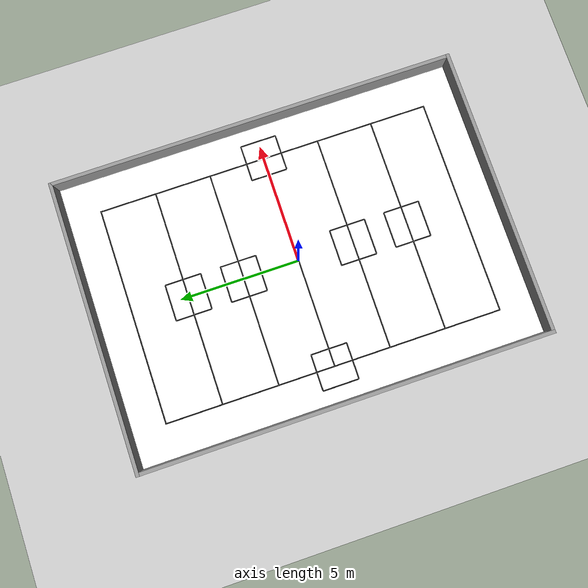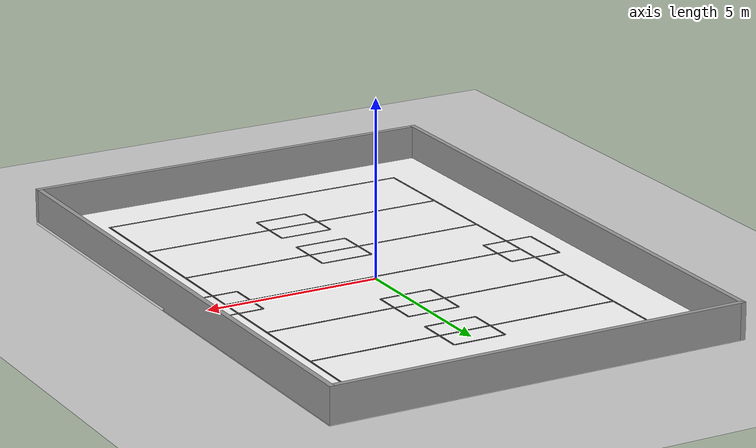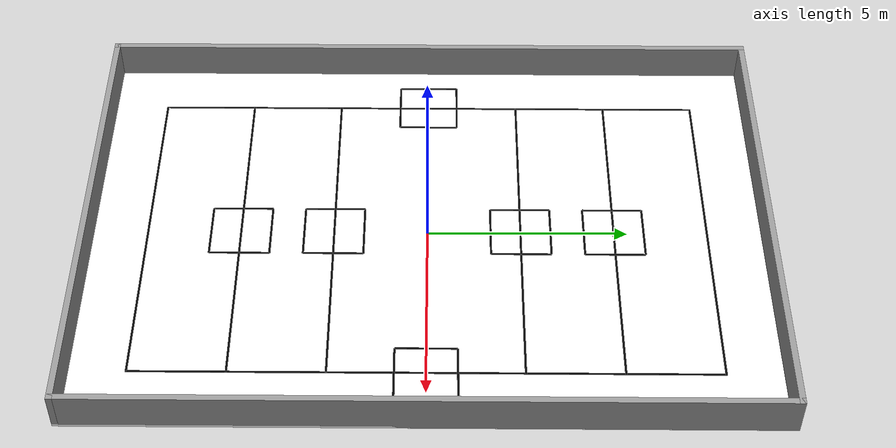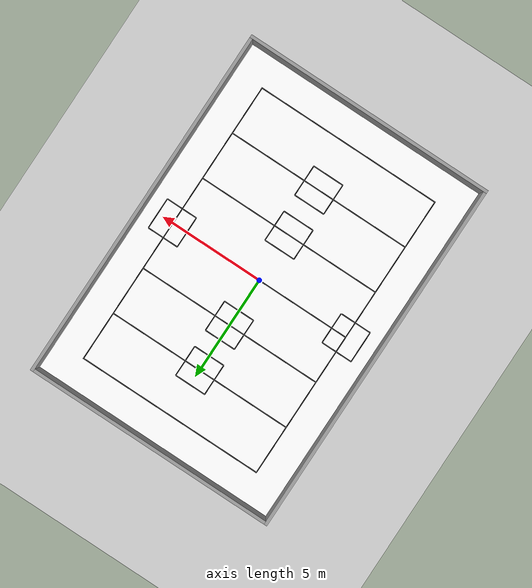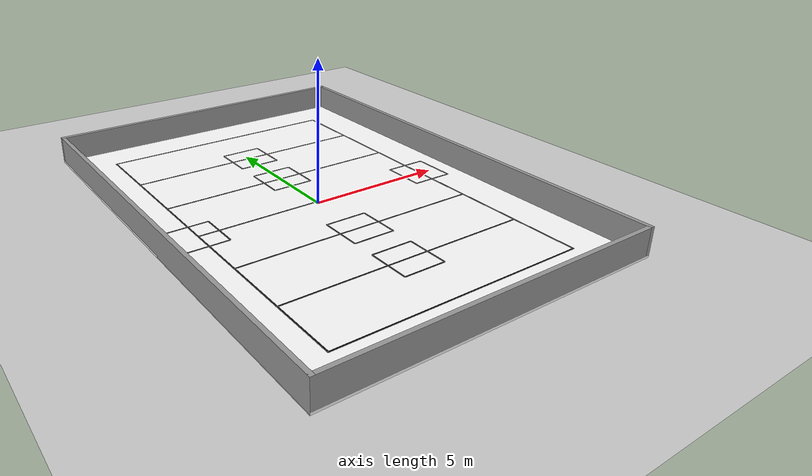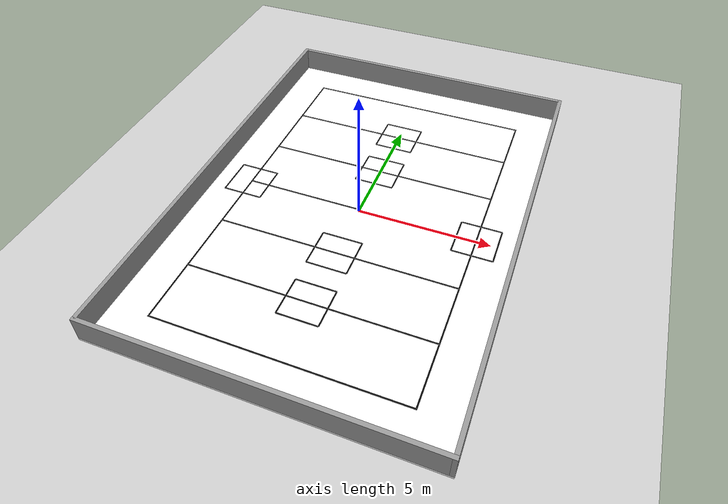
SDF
<sdf version="1.7">
 <world name="default">
  <light name="sun" type="directional">
   <pose>0 0 10 0 -0 0</pose>
   <diffuse>0.8 0.8 0.8 1</diffuse>
   <specular>0.2 0.2 0.2 1</specular>
   <attenuation>
    <range>1000</range>
    <constant>0.9</constant>
    <linear>0.01</linear>
    <quadratic>0.001</quadratic>
   </attenuation>
   <direction>-0.5 0.1 -0.9</direction>
   <spot><inner_angle>0</inner_angle><outer_angle>0</outer_angle><falloff>0</falloff></spot>
  </light>
  <model name="ground_plane">
   <static>1</static>
   <link name="link">
    <collision name="collision">
     <geometry><plane><normal>0 0 1</normal><size>100 100</size></plane></geometry>
    </collision>
    <visual name="visual">
     <geometry><plane><normal>0 0 1</normal><size>100 100</size></plane></geometry>
     <material>
      <script><name>Gazebo/Grey</name><uri>file://media/materials/scripts/gazebo.material</uri></script>
     </material>
    </visual>
   </link>
  </model>
  <model name="wooden_floor">
   <static>1</static>
   <pose>0 0 0.01 0 -0 0</pose>
   <link name="floor_link">
    <collision name="floor_collision"><geometry><box><size>12 17 0.1</size></box></geometry></collision>
    <visual name="floor_visual">
     <geometry><box><size>12 17 0.1</size></box></geometry>
     <material><ambient>1 1 1 1</ambient><diffuse>1 1 1 1</diffuse></material>
    </visual>
   </link>
  </model>
  <model name="black_line">
   <static>1</static>
   <pose>0 0 0.065 0 -0 0</pose>
   <link name="line_link">
    <collision name="line_collision"><geometry><box><size>1 0.05 0.01</size></box></geometry></collision>
    <visual name="line_visual">
     <geometry><box><size>9 0.05 0.01</size></box></geometry>
     <material><ambient>0 0 0 1</ambient><diffuse>0 0 0 1</diffuse></material>
    </visual>
   </link>
  </model>
  <gravity>0 0 -9.8</gravity>
  <scene><ambient>0.4 0.4 0.4 1</ambient><background>0.7 0.7 0.7 1</background><shadows>1</shadows></scene>
  <magnetic_field>6e-06 2.3e-05 -4.2e-05</magnetic_field>
  <atmosphere type="adiabatic"/>
  <physics type="ode">
   <max_step_size>0.001</max_step_size>
   <real_time_factor>1</real_time_factor>
   <real_time_update_rate>1000</real_time_update_rate>
  </physics>
  <spherical_coordinates>
   <surface_model>EARTH_WGS84</surface_model>
   <latitude_deg>0</latitude_deg>
   <longitude_deg>0</longitude_deg>
   <elevation>0</elevation>
   <heading_deg>0</heading_deg>
  </spherical_coordinates>
  <model name="black_line_clone">
   <static>1</static>
   <pose>0 2.33 0.065 0 -0 0</pose>
   <link name="line_link">
    <collision name="line_collision"><geometry><box><size>1 0.05 0.01</size></box></geometry></collision>
    <visual name="line_visual">
     <geometry><box><size>9 0.05 0.01</size></box></geometry>
     <material><ambient>0 0 0 1</ambient><diffuse>0 0 0 1</diffuse></material>
    </visual>
   </link>
  </model>
  <model name="black_line_clone_0">
   <static>1</static>
   <pose>0 4.666 0.065 0 -0 0</pose>
   <link name="line_link">
    <collision name="line_collision"><geometry><box><size>1 0.05 0.01</size></box></geometry></collision>
    <visual name="line_visual">
     <geometry><box><size>9 0.05 0.01</size></box></geometry>
     <material><ambient>0 0 0 1</ambient><diffuse>0 0 0 1</diffuse></material>
    </visual>
   </link>
  </model>
  <model name="black_line_clone_1">
   <static>1</static>
   <pose>0 7 0.065 0 -0 0</pose>
   <link name="line_link">
    <collision name="line_collision"><geometry><box><size>1 0.05 0.01</size></box></geometry></collision>
    <visual name="line_visual">
     <geometry><box><size>9 0.05 0.01</size></box></geometry>
     <material><ambient>0 0 0 1</ambient><diffuse>0 0 0 1</diffuse></material>
    </visual>
   </link>
  </model>
  <model name="black_line_clone_2">
   <static>1</static>
   <pose>0 -2.3333 0.065 0 -0 0</pose>
   <link name="line_link">
    <collision name="line_collision"><geometry><box><size>1 0.05 0.01</size></box></geometry></collision>
    <visual name="line_visual">
     <geometry><box><size>9 0.05 0.01</size></box></geometry>
     <material><ambient>0 0 0 1</ambient><diffuse>0 0 0 1</diffuse></material>
    </visual>
   </link>
  </model>
  <model name="black_line_clone_3">
   <static>1</static>
   <pose>0 -4.6666 0.065 0 -0 0</pose>
   <link name="line_link">
    <collision name="line_collision"><geometry><box><size>1 0.05 0.01</size></box></geometry></collision>
    <visual name="line_visual">
     <geometry><box><size>9 0.05 0.01</size></box></geometry>
     <material><ambient>0 0 0 1</ambient><diffuse>0 0 0 1</diffuse></material>
    </visual>
   </link>
  </model>
  <model name="black_line_clone_4">
   <static>1</static>
   <pose>0 -7 0.065 0 -0 0</pose>
   <link name="line_link">
    <collision name="line_collision"><geometry><box><size>1 0.05 0.01</size></box></geometry></collision>
    <visual name="line_visual">
     <geometry><box><size>9 0.05 0.01</size></box></geometry>
     <material><ambient>0 0 0 1</ambient><diffuse>0 0 0 1</diffuse></material>
    </visual>
   </link>
  </model>
  <model name="black_line_clone_5">
   <static>1</static>
   <pose>4.475 0 0.065 0 -0 0</pose>
   <link name="line_link">
    <collision name="line_collision"><geometry><box><size>1 0.05 0.01</size></box></geometry></collision>
    <visual name="line_visual">
     <geometry><box><size>0.05 14 0.01</size></box></geometry>
     <material><ambient>0 0 0 1</ambient><diffuse>0 0 0 1</diffuse></material>
    </visual>
   </link>
  </model>
  <model name="black_line_clone_5_clone">
   <static>1</static>
   <pose>-4.475 0 0.065 0 -0 0</pose>
   <link name="line_link">
    <collision name="line_collision"><geometry><box><size>1 0.05 0.01</size></box></geometry></collision>
    <visual name="line_visual">
     <geometry><box><size>0.05 14 0.01</size></box></geometry>
     <material><ambient>0 0 0 1</ambient><diffuse>0 0 0 1</diffuse></material>
    </visual>
   </link>
  </model>
  <model name="charging_station">
   <link name="left_side">
    <pose>-0.75 0 0 0 -0 0</pose>
    <visual name="left_side_visual">
     <geometry><box><size>0.05 1.5 0.01</size></box></geometry>
     <material>
      <ambient>0 0 0 1</ambient>
      <diffuse>0 0 0 1</diffuse>
      <shader type="pixel"/>
      <script><name>ModelPreview_1::left_side::left_side_visual_MATERIAL_</name><uri>__default__</uri></script>
     </material>
    </visual>
    <collision name="left_side_collision">
     <geometry><box><size>0.05 1.5 0.01</size></box></geometry>
     <surface>
      <friction>
       <ode><mu>1</mu><mu2>1</mu2><fdir1>0 0 0</fdir1><slip1>0</slip1><slip2>0</slip2></ode>
       <torsional>
        <coefficient>1</coefficient>
        <patch_radius>0</patch_radius>
        <surface_radius>0</surface_radius>
        <use_patch_radius>1</use_patch_radius>
        <ode><slip>0</slip></ode>
       </torsional>
      </friction>
      <bounce><restitution_coefficient>0</restitution_coefficient><threshold>1e+06</threshold></bounce>
      <contact>
       <collide_without_contact>0</collide_without_contact>
       <collide_without_contact_bitmask>1</collide_without_contact_bitmask>
       <collide_bitmask>1</collide_bitmask>
       <ode>
        <soft_cfm>0</soft_cfm>
        <soft_erp>0.2</soft_erp>
        <kp>1e+13</kp>
        <kd>1</kd>
        <max_vel>0.01</max_vel>
        <min_depth>0</min_depth>
       </ode>
       <bullet>
        <split_impulse>1</split_impulse>
        <split_impulse_penetration_threshold>-0.01</split_impulse_penetration_threshold>
        <soft_cfm>0</soft_cfm>
        <soft_erp>0.2</soft_erp>
        <kp>1e+13</kp>
        <kd>1</kd>
       </bullet>
      </contact>
     </surface>
    </collision>
   </link>
   <link name="bottom_side">
    <pose>0 -0.75 0 0 -0 0</pose>
    <visual name="bottom_side_visual">
     <geometry><box><size>1.5 0.05 0.01</size></box></geometry>
     <material>
      <ambient>0 0 0 1</ambient>
      <diffuse>0 0 0 1</diffuse>
      <shader type="pixel"/>
      <script><name>ModelPreview_1::bottom_side::bottom_side_visual_MATERIAL_</name><uri>__default__</uri></script>
     </material>
    </visual>
    <collision name="bottom_side_collision">
     <geometry><box><size>1.5 0.05 0.01</size></box></geometry>
     <surface>
      <friction>
       <ode><mu>1</mu><mu2>1</mu2><fdir1>0 0 0</fdir1><slip1>0</slip1><slip2>0</slip2></ode>
       <torsional>
        <coefficient>1</coefficient>
        <patch_radius>0</patch_radius>
        <surface_radius>0</surface_radius>
        <use_patch_radius>1</use_patch_radius>
        <ode><slip>0</slip></ode>
       </torsional>
      </friction>
      <bounce><restitution_coefficient>0</restitution_coefficient><threshold>1e+06</threshold></bounce>
      <contact>
       <collide_without_contact>0</collide_without_contact>
       <collide_without_contact_bitmask>1</collide_without_contact_bitmask>
       <collide_bitmask>1</collide_bitmask>
       <ode>
        <soft_cfm>0</soft_cfm>
        <soft_erp>0.2</soft_erp>
        <kp>1e+13</kp>
        <kd>1</kd>
        <max_vel>0.01</max_vel>
        <min_depth>0</min_depth>
       </ode>
       <bullet>
        <split_impulse>1</split_impulse>
        <split_impulse_penetration_threshold>-0.01</split_impulse_penetration_threshold>
        <soft_cfm>0</soft_cfm>
        <soft_erp>0.2</soft_erp>
        <kp>1e+13</kp>
        <kd>1</kd>
       </bullet>
      </contact>
     </surface>
    </collision>
   </link>
   <link name="right_side">
    <pose>0.75 0 0 0 -0 0</pose>
    <visual name="right_side_visual">
     <geometry><box><size>0.05 1.5 0.01</size></box></geometry>
     <material>
      <ambient>0 0 0 1</ambient>
      <diffuse>0 0 0 1</diffuse>
      <shader type="pixel"/>
      <script><name>ModelPreview_1::right_side::right_side_visual_MATERIAL_</name><uri>__default__</uri></script>
     </material>
    </visual>
    <collision name="right_side_collision">
     <geometry><box><size>0.05 1.5 0.01</size></box></geometry>
     <surface>
      <friction>
       <ode><mu>1</mu><mu2>1</mu2><fdir1>0 0 0</fdir1><slip1>0</slip1><slip2>0</slip2></ode>
       <torsional>
        <coefficient>1</coefficient>
        <patch_radius>0</patch_radius>
        <surface_radius>0</surface_radius>
        <use_patch_radius>1</use_patch_radius>
        <ode><slip>0</slip></ode>
       </torsional>
      </friction>
      <bounce><restitution_coefficient>0</restitution_coefficient><threshold>1e+06</threshold></bounce>
      <contact>
       <collide_without_contact>0</collide_without_contact>
       <collide_without_contact_bitmask>1</collide_without_contact_bitmask>
       <collide_bitmask>1</collide_bitmask>
       <ode>
        <soft_cfm>0</soft_cfm>
        <soft_erp>0.2</soft_erp>
        <kp>1e+13</kp>
        <kd>1</kd>
        <max_vel>0.01</max_vel>
        <min_depth>0</min_depth>
       </ode>
       <bullet>
        <split_impulse>1</split_impulse>
        <split_impulse_penetration_threshold>-0.01</split_impulse_penetration_threshold>
        <soft_cfm>0</soft_cfm>
        <soft_erp>0.2</soft_erp>
        <kp>1e+13</kp>
        <kd>1</kd>
       </bullet>
      </contact>
     </surface>
    </collision>
   </link>
   <link name="top_side">
    <pose>0 0.75 0 0 -0 0</pose>
    <visual name="top_side_visual">
     <geometry><box><size>1.5 0.05 0.01</size></box></geometry>
     <material>
      <ambient>0 0 0 1</ambient>
      <diffuse>0 0 0 1</diffuse>
      <shader type="pixel"/>
      <script><name>ModelPreview_1::top_side::top_side_visual_MATERIAL_</name><uri>__default__</uri></script>
     </material>
    </visual>
    <collision name="top_side_collision">
     <geometry><box><size>1.5 0.05 0.01</size></box></geometry>
     <surface>
      <friction>
       <ode><mu>1</mu><mu2>1</mu2><fdir1>0 0 0</fdir1><slip1>0</slip1><slip2>0</slip2></ode>
       <torsional>
        <coefficient>1</coefficient>
        <patch_radius>0</patch_radius>
        <surface_radius>0</surface_radius>
        <use_patch_radius>1</use_patch_radius>
        <ode><slip>0</slip></ode>
       </torsional>
      </friction>
      <bounce><restitution_coefficient>0</restitution_coefficient><threshold>1e+06</threshold></bounce>
      <contact>
       <collide_without_contact>0</collide_without_contact>
       <collide_without_contact_bitmask>1</collide_without_contact_bitmask>
       <collide_bitmask>1</collide_bitmask>
       <ode>
        <soft_cfm>0</soft_cfm>
        <soft_erp>0.2</soft_erp>
        <kp>1e+13</kp>
        <kd>1</kd>
        <max_vel>0.01</max_vel>
        <min_depth>0</min_depth>
       </ode>
       <bullet>
        <split_impulse>1</split_impulse>
        <split_impulse_penetration_threshold>-0.01</split_impulse_penetration_threshold>
        <soft_cfm>0</soft_cfm>
        <soft_erp>0.2</soft_erp>
        <kp>1e+13</kp>
        <kd>1</kd>
       </bullet>
      </contact>
     </surface>
    </collision>
   </link>
   <static>1</static>
   <pose>0 -2.333 0.065 0 -0 0</pose>
  </model>
  <model name="charging_station_clone">
   <link name="left_side">
    <pose>-0.75 0 0 0 -0 0</pose>
    <visual name="left_side_visual">
     <geometry><box><size>0.05 1.5 0.01</size></box></geometry>
     <material>
      <ambient>0 0 0 1</ambient>
      <diffuse>0 0 0 1</diffuse>
      <shader type="pixel"/>
      <script><name>ModelPreview_1::left_side::left_side_visual_MATERIAL_</name><uri>__default__</uri></script>
     </material>
    </visual>
    <collision name="left_side_collision">
     <geometry><box><size>0.05 1.5 0.01</size></box></geometry>
     <surface>
      <friction>
       <ode><mu>1</mu><mu2>1</mu2><fdir1>0 0 0</fdir1><slip1>0</slip1><slip2>0</slip2></ode>
       <torsional>
        <coefficient>1</coefficient>
        <patch_radius>0</patch_radius>
        <surface_radius>0</surface_radius>
        <use_patch_radius>1</use_patch_radius>
        <ode><slip>0</slip></ode>
       </torsional>
      </friction>
      <bounce><restitution_coefficient>0</restitution_coefficient><threshold>1e+06</threshold></bounce>
      <contact>
       <collide_without_contact>0</collide_without_contact>
       <collide_without_contact_bitmask>1</collide_without_contact_bitmask>
       <collide_bitmask>1</collide_bitmask>
       <ode>
        <soft_cfm>0</soft_cfm>
        <soft_erp>0.2</soft_erp>
        <kp>1e+13</kp>
        <kd>1</kd>
        <max_vel>0.01</max_vel>
        <min_depth>0</min_depth>
       </ode>
       <bullet>
        <split_impulse>1</split_impulse>
        <split_impulse_penetration_threshold>-0.01</split_impulse_penetration_threshold>
        <soft_cfm>0</soft_cfm>
        <soft_erp>0.2</soft_erp>
        <kp>1e+13</kp>
        <kd>1</kd>
       </bullet>
      </contact>
     </surface>
    </collision>
   </link>
   <link name="bottom_side">
    <pose>0 -0.75 0 0 -0 0</pose>
    <visual name="bottom_side_visual">
     <geometry><box><size>1.5 0.05 0.01</size></box></geometry>
     <material>
      <ambient>0 0 0 1</ambient>
      <diffuse>0 0 0 1</diffuse>
      <shader type="pixel"/>
      <script><name>ModelPreview_1::bottom_side::bottom_side_visual_MATERIAL_</name><uri>__default__</uri></script>
     </material>
    </visual>
    <collision name="bottom_side_collision">
     <geometry><box><size>1.5 0.05 0.01</size></box></geometry>
     <surface>
      <friction>
       <ode><mu>1</mu><mu2>1</mu2><fdir1>0 0 0</fdir1><slip1>0</slip1><slip2>0</slip2></ode>
       <torsional>
        <coefficient>1</coefficient>
        <patch_radius>0</patch_radius>
        <surface_radius>0</surface_radius>
        <use_patch_radius>1</use_patch_radius>
        <ode><slip>0</slip></ode>
       </torsional>
      </friction>
      <bounce><restitution_coefficient>0</restitution_coefficient><threshold>1e+06</threshold></bounce>
      <contact>
       <collide_without_contact>0</collide_without_contact>
       <collide_without_contact_bitmask>1</collide_without_contact_bitmask>
       <collide_bitmask>1</collide_bitmask>
       <ode>
        <soft_cfm>0</soft_cfm>
        <soft_erp>0.2</soft_erp>
        <kp>1e+13</kp>
        <kd>1</kd>
        <max_vel>0.01</max_vel>
        <min_depth>0</min_depth>
       </ode>
       <bullet>
        <split_impulse>1</split_impulse>
        <split_impulse_penetration_threshold>-0.01</split_impulse_penetration_threshold>
        <soft_cfm>0</soft_cfm>
        <soft_erp>0.2</soft_erp>
        <kp>1e+13</kp>
        <kd>1</kd>
       </bullet>
      </contact>
     </surface>
    </collision>
   </link>
   <link name="right_side">
    <pose>0.75 0 0 0 -0 0</pose>
    <visual name="right_side_visual">
     <geometry><box><size>0.05 1.5 0.01</size></box></geometry>
     <material>
      <ambient>0 0 0 1</ambient>
      <diffuse>0 0 0 1</diffuse>
      <shader type="pixel"/>
      <script><name>ModelPreview_1::right_side::right_side_visual_MATERIAL_</name><uri>__default__</uri></script>
     </material>
    </visual>
    <collision name="right_side_collision">
     <geometry><box><size>0.05 1.5 0.01</size></box></geometry>
     <surface>
      <friction>
       <ode><mu>1</mu><mu2>1</mu2><fdir1>0 0 0</fdir1><slip1>0</slip1><slip2>0</slip2></ode>
       <torsional>
        <coefficient>1</coefficient>
        <patch_radius>0</patch_radius>
        <surface_radius>0</surface_radius>
        <use_patch_radius>1</use_patch_radius>
        <ode><slip>0</slip></ode>
       </torsional>
      </friction>
      <bounce><restitution_coefficient>0</restitution_coefficient><threshold>1e+06</threshold></bounce>
      <contact>
       <collide_without_contact>0</collide_without_contact>
       <collide_without_contact_bitmask>1</collide_without_contact_bitmask>
       <collide_bitmask>1</collide_bitmask>
       <ode>
        <soft_cfm>0</soft_cfm>
        <soft_erp>0.2</soft_erp>
        <kp>1e+13</kp>
        <kd>1</kd>
        <max_vel>0.01</max_vel>
        <min_depth>0</min_depth>
       </ode>
       <bullet>
        <split_impulse>1</split_impulse>
        <split_impulse_penetration_threshold>-0.01</split_impulse_penetration_threshold>
        <soft_cfm>0</soft_cfm>
        <soft_erp>0.2</soft_erp>
        <kp>1e+13</kp>
        <kd>1</kd>
       </bullet>
      </contact>
     </surface>
    </collision>
   </link>
   <link name="top_side">
    <pose>0 0.75 0 0 -0 0</pose>
    <visual name="top_side_visual">
     <geometry><box><size>1.5 0.05 0.01</size></box></geometry>
     <material>
      <ambient>0 0 0 1</ambient>
      <diffuse>0 0 0 1</diffuse>
      <shader type="pixel"/>
      <script><name>ModelPreview_1::top_side::top_side_visual_MATERIAL_</name><uri>__default__</uri></script>
     </material>
    </visual>
    <collision name="top_side_collision">
     <geometry><box><size>1.5 0.05 0.01</size></box></geometry>
     <surface>
      <friction>
       <ode><mu>1</mu><mu2>1</mu2><fdir1>0 0 0</fdir1><slip1>0</slip1><slip2>0</slip2></ode>
       <torsional>
        <coefficient>1</coefficient>
        <patch_radius>0</patch_radius>
        <surface_radius>0</surface_radius>
        <use_patch_radius>1</use_patch_radius>
        <ode><slip>0</slip></ode>
       </torsional>
      </friction>
      <bounce><restitution_coefficient>0</restitution_coefficient><threshold>1e+06</threshold></bounce>
      <contact>
       <collide_without_contact>0</collide_without_contact>
       <collide_without_contact_bitmask>1</collide_without_contact_bitmask>
       <collide_bitmask>1</collide_bitmask>
       <ode>
        <soft_cfm>0</soft_cfm>
        <soft_erp>0.2</soft_erp>
        <kp>1e+13</kp>
        <kd>1</kd>
        <max_vel>0.01</max_vel>
        <min_depth>0</min_depth>
       </ode>
       <bullet>
        <split_impulse>1</split_impulse>
        <split_impulse_penetration_threshold>-0.01</split_impulse_penetration_threshold>
        <soft_cfm>0</soft_cfm>
        <soft_erp>0.2</soft_erp>
        <kp>1e+13</kp>
        <kd>1</kd>
       </bullet>
      </contact>
     </surface>
    </collision>
   </link>
   <static>1</static>
   <pose>0 -4.66666 0.065 0 -0 0</pose>
  </model>
  <model name="charging_station_clone_0">
   <link name="left_side">
    <pose>-0.75 0 0 0 -0 0</pose>
    <visual name="left_side_visual">
     <geometry><box><size>0.05 1.5 0.01</size></box></geometry>
     <material>
      <ambient>0 0 0 1</ambient>
      <diffuse>0 0 0 1</diffuse>
      <shader type="pixel"/>
      <script><name>ModelPreview_1::left_side::left_side_visual_MATERIAL_</name><uri>__default__</uri></script>
     </material>
    </visual>
    <collision name="left_side_collision">
     <geometry><box><size>0.05 1.5 0.01</size></box></geometry>
     <surface>
      <friction>
       <ode><mu>1</mu><mu2>1</mu2><fdir1>0 0 0</fdir1><slip1>0</slip1><slip2>0</slip2></ode>
       <torsional>
        <coefficient>1</coefficient>
        <patch_radius>0</patch_radius>
        <surface_radius>0</surface_radius>
        <use_patch_radius>1</use_patch_radius>
        <ode><slip>0</slip></ode>
       </torsional>
      </friction>
      <bounce><restitution_coefficient>0</restitution_coefficient><threshold>1e+06</threshold></bounce>
      <contact>
       <collide_without_contact>0</collide_without_contact>
       <collide_without_contact_bitmask>1</collide_without_contact_bitmask>
       <collide_bitmask>1</collide_bitmask>
       <ode>
        <soft_cfm>0</soft_cfm>
        <soft_erp>0.2</soft_erp>
        <kp>1e+13</kp>
        <kd>1</kd>
        <max_vel>0.01</max_vel>
        <min_depth>0</min_depth>
       </ode>
       <bullet>
        <split_impulse>1</split_impulse>
        <split_impulse_penetration_threshold>-0.01</split_impulse_penetration_threshold>
        <soft_cfm>0</soft_cfm>
        <soft_erp>0.2</soft_erp>
        <kp>1e+13</kp>
        <kd>1</kd>
       </bullet>
      </contact>
     </surface>
    </collision>
   </link>
   <link name="bottom_side">
    <pose>0 -0.75 0 0 -0 0</pose>
    <visual name="bottom_side_visual">
     <geometry><box><size>1.5 0.05 0.01</size></box></geometry>
     <material>
      <ambient>0 0 0 1</ambient>
      <diffuse>0 0 0 1</diffuse>
      <shader type="pixel"/>
      <script><name>ModelPreview_1::bottom_side::bottom_side_visual_MATERIAL_</name><uri>__default__</uri></script>
     </material>
    </visual>
    <collision name="bottom_side_collision">
     <geometry><box><size>1.5 0.05 0.01</size></box></geometry>
     <surface>
      <friction>
       <ode><mu>1</mu><mu2>1</mu2><fdir1>0 0 0</fdir1><slip1>0</slip1><slip2>0</slip2></ode>
       <torsional>
        <coefficient>1</coefficient>
        <patch_radius>0</patch_radius>
        <surface_radius>0</surface_radius>
        <use_patch_radius>1</use_patch_radius>
        <ode><slip>0</slip></ode>
       </torsional>
      </friction>
      <bounce><restitution_coefficient>0</restitution_coefficient><threshold>1e+06</threshold></bounce>
      <contact>
       <collide_without_contact>0</collide_without_contact>
       <collide_without_contact_bitmask>1</collide_without_contact_bitmask>
       <collide_bitmask>1</collide_bitmask>
       <ode>
        <soft_cfm>0</soft_cfm>
        <soft_erp>0.2</soft_erp>
        <kp>1e+13</kp>
        <kd>1</kd>
        <max_vel>0.01</max_vel>
        <min_depth>0</min_depth>
       </ode>
       <bullet>
        <split_impulse>1</split_impulse>
        <split_impulse_penetration_threshold>-0.01</split_impulse_penetration_threshold>
        <soft_cfm>0</soft_cfm>
        <soft_erp>0.2</soft_erp>
        <kp>1e+13</kp>
        <kd>1</kd>
       </bullet>
      </contact>
     </surface>
    </collision>
   </link>
   <link name="right_side">
    <pose>0.75 0 0 0 -0 0</pose>
    <visual name="right_side_visual">
     <geometry><box><size>0.05 1.5 0.01</size></box></geometry>
     <material>
      <ambient>0 0 0 1</ambient>
      <diffuse>0 0 0 1</diffuse>
      <shader type="pixel"/>
      <script><name>ModelPreview_1::right_side::right_side_visual_MATERIAL_</name><uri>__default__</uri></script>
     </material>
    </visual>
    <collision name="right_side_collision">
     <geometry><box><size>0.05 1.5 0.01</size></box></geometry>
     <surface>
      <friction>
       <ode><mu>1</mu><mu2>1</mu2><fdir1>0 0 0</fdir1><slip1>0</slip1><slip2>0</slip2></ode>
       <torsional>
        <coefficient>1</coefficient>
        <patch_radius>0</patch_radius>
        <surface_radius>0</surface_radius>
        <use_patch_radius>1</use_patch_radius>
        <ode><slip>0</slip></ode>
       </torsional>
      </friction>
      <bounce><restitution_coefficient>0</restitution_coefficient><threshold>1e+06</threshold></bounce>
      <contact>
       <collide_without_contact>0</collide_without_contact>
       <collide_without_contact_bitmask>1</collide_without_contact_bitmask>
       <collide_bitmask>1</collide_bitmask>
       <ode>
        <soft_cfm>0</soft_cfm>
        <soft_erp>0.2</soft_erp>
        <kp>1e+13</kp>
        <kd>1</kd>
        <max_vel>0.01</max_vel>
        <min_depth>0</min_depth>
       </ode>
       <bullet>
        <split_impulse>1</split_impulse>
        <split_impulse_penetration_threshold>-0.01</split_impulse_penetration_threshold>
        <soft_cfm>0</soft_cfm>
        <soft_erp>0.2</soft_erp>
        <kp>1e+13</kp>
        <kd>1</kd>
       </bullet>
      </contact>
     </surface>
    </collision>
   </link>
   <link name="top_side">
    <pose>0 0.75 0 0 -0 0</pose>
    <visual name="top_side_visual">
     <geometry><box><size>1.5 0.05 0.01</size></box></geometry>
     <material>
      <ambient>0 0 0 1</ambient>
      <diffuse>0 0 0 1</diffuse>
      <shader type="pixel"/>
      <script><name>ModelPreview_1::top_side::top_side_visual_MATERIAL_</name><uri>__default__</uri></script>
     </material>
    </visual>
    <collision name="top_side_collision">
     <geometry><box><size>1.5 0.05 0.01</size></box></geometry>
     <surface>
      <friction>
       <ode><mu>1</mu><mu2>1</mu2><fdir1>0 0 0</fdir1><slip1>0</slip1><slip2>0</slip2></ode>
       <torsional>
        <coefficient>1</coefficient>
        <patch_radius>0</patch_radius>
        <surface_radius>0</surface_radius>
        <use_patch_radius>1</use_patch_radius>
        <ode><slip>0</slip></ode>
       </torsional>
      </friction>
      <bounce><restitution_coefficient>0</restitution_coefficient><threshold>1e+06</threshold></bounce>
      <contact>
       <collide_without_contact>0</collide_without_contact>
       <collide_without_contact_bitmask>1</collide_without_contact_bitmask>
       <collide_bitmask>1</collide_bitmask>
       <ode>
        <soft_cfm>0</soft_cfm>
        <soft_erp>0.2</soft_erp>
        <kp>1e+13</kp>
        <kd>1</kd>
        <max_vel>0.01</max_vel>
        <min_depth>0</min_depth>
       </ode>
       <bullet>
        <split_impulse>1</split_impulse>
        <split_impulse_penetration_threshold>-0.01</split_impulse_penetration_threshold>
        <soft_cfm>0</soft_cfm>
        <soft_erp>0.2</soft_erp>
        <kp>1e+13</kp>
        <kd>1</kd>
       </bullet>
      </contact>
     </surface>
    </collision>
   </link>
   <static>1</static>
   <pose>0 2.333 0.065 0 -0 0</pose>
  </model>
  <model name="charging_station_clone_1">
   <link name="left_side">
    <pose>-0.75 0 0 0 -0 0</pose>
    <visual name="left_side_visual">
     <geometry><box><size>0.05 1.5 0.01</size></box></geometry>
     <material>
      <ambient>0 0 0 1</ambient>
      <diffuse>0 0 0 1</diffuse>
      <shader type="pixel"/>
      <script><name>ModelPreview_1::left_side::left_side_visual_MATERIAL_</name><uri>__default__</uri></script>
     </material>
    </visual>
    <collision name="left_side_collision">
     <geometry><box><size>0.05 1.5 0.01</size></box></geometry>
     <surface>
      <friction>
       <ode><mu>1</mu><mu2>1</mu2><fdir1>0 0 0</fdir1><slip1>0</slip1><slip2>0</slip2></ode>
       <torsional>
        <coefficient>1</coefficient>
        <patch_radius>0</patch_radius>
        <surface_radius>0</surface_radius>
        <use_patch_radius>1</use_patch_radius>
        <ode><slip>0</slip></ode>
       </torsional>
      </friction>
      <bounce><restitution_coefficient>0</restitution_coefficient><threshold>1e+06</threshold></bounce>
      <contact>
       <collide_without_contact>0</collide_without_contact>
       <collide_without_contact_bitmask>1</collide_without_contact_bitmask>
       <collide_bitmask>1</collide_bitmask>
       <ode>
        <soft_cfm>0</soft_cfm>
        <soft_erp>0.2</soft_erp>
        <kp>1e+13</kp>
        <kd>1</kd>
        <max_vel>0.01</max_vel>
        <min_depth>0</min_depth>
       </ode>
       <bullet>
        <split_impulse>1</split_impulse>
        <split_impulse_penetration_threshold>-0.01</split_impulse_penetration_threshold>
        <soft_cfm>0</soft_cfm>
        <soft_erp>0.2</soft_erp>
        <kp>1e+13</kp>
        <kd>1</kd>
       </bullet>
      </contact>
     </surface>
    </collision>
   </link>
   <link name="bottom_side">
    <pose>0 -0.75 0 0 -0 0</pose>
    <visual name="bottom_side_visual">
     <geometry><box><size>1.5 0.05 0.01</size></box></geometry>
     <material>
      <ambient>0 0 0 1</ambient>
      <diffuse>0 0 0 1</diffuse>
      <shader type="pixel"/>
      <script><name>ModelPreview_1::bottom_side::bottom_side_visual_MATERIAL_</name><uri>__default__</uri></script>
     </material>
    </visual>
    <collision name="bottom_side_collision">
     <geometry><box><size>1.5 0.05 0.01</size></box></geometry>
     <surface>
      <friction>
       <ode><mu>1</mu><mu2>1</mu2><fdir1>0 0 0</fdir1><slip1>0</slip1><slip2>0</slip2></ode>
       <torsional>
        <coefficient>1</coefficient>
        <patch_radius>0</patch_radius>
        <surface_radius>0</surface_radius>
        <use_patch_radius>1</use_patch_radius>
        <ode><slip>0</slip></ode>
       </torsional>
      </friction>
      <bounce><restitution_coefficient>0</restitution_coefficient><threshold>1e+06</threshold></bounce>
      <contact>
       <collide_without_contact>0</collide_without_contact>
       <collide_without_contact_bitmask>1</collide_without_contact_bitmask>
       <collide_bitmask>1</collide_bitmask>
       <ode>
        <soft_cfm>0</soft_cfm>
        <soft_erp>0.2</soft_erp>
        <kp>1e+13</kp>
        <kd>1</kd>
        <max_vel>0.01</max_vel>
        <min_depth>0</min_depth>
       </ode>
       <bullet>
        <split_impulse>1</split_impulse>
        <split_impulse_penetration_threshold>-0.01</split_impulse_penetration_threshold>
        <soft_cfm>0</soft_cfm>
        <soft_erp>0.2</soft_erp>
        <kp>1e+13</kp>
        <kd>1</kd>
       </bullet>
      </contact>
     </surface>
    </collision>
   </link>
   <link name="right_side">
    <pose>0.75 0 0 0 -0 0</pose>
    <visual name="right_side_visual">
     <geometry><box><size>0.05 1.5 0.01</size></box></geometry>
     <material>
      <ambient>0 0 0 1</ambient>
      <diffuse>0 0 0 1</diffuse>
      <shader type="pixel"/>
      <script><name>ModelPreview_1::right_side::right_side_visual_MATERIAL_</name><uri>__default__</uri></script>
     </material>
    </visual>
    <collision name="right_side_collision">
     <geometry><box><size>0.05 1.5 0.01</size></box></geometry>
     <surface>
      <friction>
       <ode><mu>1</mu><mu2>1</mu2><fdir1>0 0 0</fdir1><slip1>0</slip1><slip2>0</slip2></ode>
       <torsional>
        <coefficient>1</coefficient>
        <patch_radius>0</patch_radius>
        <surface_radius>0</surface_radius>
        <use_patch_radius>1</use_patch_radius>
        <ode><slip>0</slip></ode>
       </torsional>
      </friction>
      <bounce><restitution_coefficient>0</restitution_coefficient><threshold>1e+06</threshold></bounce>
      <contact>
       <collide_without_contact>0</collide_without_contact>
       <collide_without_contact_bitmask>1</collide_without_contact_bitmask>
       <collide_bitmask>1</collide_bitmask>
       <ode>
        <soft_cfm>0</soft_cfm>
        <soft_erp>0.2</soft_erp>
        <kp>1e+13</kp>
        <kd>1</kd>
        <max_vel>0.01</max_vel>
        <min_depth>0</min_depth>
       </ode>
       <bullet>
        <split_impulse>1</split_impulse>
        <split_impulse_penetration_threshold>-0.01</split_impulse_penetration_threshold>
        <soft_cfm>0</soft_cfm>
        <soft_erp>0.2</soft_erp>
        <kp>1e+13</kp>
        <kd>1</kd>
       </bullet>
      </contact>
     </surface>
    </collision>
   </link>
   <link name="top_side">
    <pose>0 0.75 0 0 -0 0</pose>
    <visual name="top_side_visual">
     <geometry><box><size>1.5 0.05 0.01</size></box></geometry>
     <material>
      <ambient>0 0 0 1</ambient>
      <diffuse>0 0 0 1</diffuse>
      <shader type="pixel"/>
      <script><name>ModelPreview_1::top_side::top_side_visual_MATERIAL_</name><uri>__default__</uri></script>
     </material>
    </visual>
    <collision name="top_side_collision">
     <geometry><box><size>1.5 0.05 0.01</size></box></geometry>
     <surface>
      <friction>
       <ode><mu>1</mu><mu2>1</mu2><fdir1>0 0 0</fdir1><slip1>0</slip1><slip2>0</slip2></ode>
       <torsional>
        <coefficient>1</coefficient>
        <patch_radius>0</patch_radius>
        <surface_radius>0</surface_radius>
        <use_patch_radius>1</use_patch_radius>
        <ode><slip>0</slip></ode>
       </torsional>
      </friction>
      <bounce><restitution_coefficient>0</restitution_coefficient><threshold>1e+06</threshold></bounce>
      <contact>
       <collide_without_contact>0</collide_without_contact>
       <collide_without_contact_bitmask>1</collide_without_contact_bitmask>
       <collide_bitmask>1</collide_bitmask>
       <ode>
        <soft_cfm>0</soft_cfm>
        <soft_erp>0.2</soft_erp>
        <kp>1e+13</kp>
        <kd>1</kd>
        <max_vel>0.01</max_vel>
        <min_depth>0</min_depth>
       </ode>
       <bullet>
        <split_impulse>1</split_impulse>
        <split_impulse_penetration_threshold>-0.01</split_impulse_penetration_threshold>
        <soft_cfm>0</soft_cfm>
        <soft_erp>0.2</soft_erp>
        <kp>1e+13</kp>
        <kd>1</kd>
       </bullet>
      </contact>
     </surface>
    </collision>
   </link>
   <static>1</static>
   <pose>0 4.666 0.065 0 -0 0</pose>
  </model>
  <model name="charging_station_clone_2">
   <link name="left_side">
    <pose>-0.75 0 0 0 -0 0</pose>
    <visual name="left_side_visual">
     <geometry><box><size>0.05 1.5 0.01</size></box></geometry>
     <material>
      <ambient>0 0 0 1</ambient>
      <diffuse>0 0 0 1</diffuse>
      <shader type="pixel"/>
      <script><name>ModelPreview_1::left_side::left_side_visual_MATERIAL_</name><uri>__default__</uri></script>
     </material>
    </visual>
    <collision name="left_side_collision">
     <geometry><box><size>0.05 1.5 0.01</size></box></geometry>
     <surface>
      <friction>
       <ode><mu>1</mu><mu2>1</mu2><fdir1>0 0 0</fdir1><slip1>0</slip1><slip2>0</slip2></ode>
       <torsional>
        <coefficient>1</coefficient>
        <patch_radius>0</patch_radius>
        <surface_radius>0</surface_radius>
        <use_patch_radius>1</use_patch_radius>
        <ode><slip>0</slip></ode>
       </torsional>
      </friction>
      <bounce><restitution_coefficient>0</restitution_coefficient><threshold>1e+06</threshold></bounce>
      <contact>
       <collide_without_contact>0</collide_without_contact>
       <collide_without_contact_bitmask>1</collide_without_contact_bitmask>
       <collide_bitmask>1</collide_bitmask>
       <ode>
        <soft_cfm>0</soft_cfm>
        <soft_erp>0.2</soft_erp>
        <kp>1e+13</kp>
        <kd>1</kd>
        <max_vel>0.01</max_vel>
        <min_depth>0</min_depth>
       </ode>
       <bullet>
        <split_impulse>1</split_impulse>
        <split_impulse_penetration_threshold>-0.01</split_impulse_penetration_threshold>
        <soft_cfm>0</soft_cfm>
        <soft_erp>0.2</soft_erp>
        <kp>1e+13</kp>
        <kd>1</kd>
       </bullet>
      </contact>
     </surface>
    </collision>
   </link>
   <link name="bottom_side">
    <pose>0 -0.75 0 0 -0 0</pose>
    <visual name="bottom_side_visual">
     <geometry><box><size>1.5 0.05 0.01</size></box></geometry>
     <material>
      <ambient>0 0 0 1</ambient>
      <diffuse>0 0 0 1</diffuse>
      <shader type="pixel"/>
      <script><name>ModelPreview_1::bottom_side::bottom_side_visual_MATERIAL_</name><uri>__default__</uri></script>
     </material>
    </visual>
    <collision name="bottom_side_collision">
     <geometry><box><size>1.5 0.05 0.01</size></box></geometry>
     <surface>
      <friction>
       <ode><mu>1</mu><mu2>1</mu2><fdir1>0 0 0</fdir1><slip1>0</slip1><slip2>0</slip2></ode>
       <torsional>
        <coefficient>1</coefficient>
        <patch_radius>0</patch_radius>
        <surface_radius>0</surface_radius>
        <use_patch_radius>1</use_patch_radius>
        <ode><slip>0</slip></ode>
       </torsional>
      </friction>
      <bounce><restitution_coefficient>0</restitution_coefficient><threshold>1e+06</threshold></bounce>
      <contact>
       <collide_without_contact>0</collide_without_contact>
       <collide_without_contact_bitmask>1</collide_without_contact_bitmask>
       <collide_bitmask>1</collide_bitmask>
       <ode>
        <soft_cfm>0</soft_cfm>
        <soft_erp>0.2</soft_erp>
        <kp>1e+13</kp>
        <kd>1</kd>
        <max_vel>0.01</max_vel>
        <min_depth>0</min_depth>
       </ode>
       <bullet>
        <split_impulse>1</split_impulse>
        <split_impulse_penetration_threshold>-0.01</split_impulse_penetration_threshold>
        <soft_cfm>0</soft_cfm>
        <soft_erp>0.2</soft_erp>
        <kp>1e+13</kp>
        <kd>1</kd>
       </bullet>
      </contact>
     </surface>
    </collision>
   </link>
   <link name="right_side">
    <pose>0.75 0 0 0 -0 0</pose>
    <visual name="right_side_visual">
     <geometry><box><size>0.05 1.5 0.01</size></box></geometry>
     <material>
      <ambient>0 0 0 1</ambient>
      <diffuse>0 0 0 1</diffuse>
      <shader type="pixel"/>
      <script><name>ModelPreview_1::right_side::right_side_visual_MATERIAL_</name><uri>__default__</uri></script>
     </material>
    </visual>
    <collision name="right_side_collision">
     <geometry><box><size>0.05 1.5 0.01</size></box></geometry>
     <surface>
      <friction>
       <ode><mu>1</mu><mu2>1</mu2><fdir1>0 0 0</fdir1><slip1>0</slip1><slip2>0</slip2></ode>
       <torsional>
        <coefficient>1</coefficient>
        <patch_radius>0</patch_radius>
        <surface_radius>0</surface_radius>
        <use_patch_radius>1</use_patch_radius>
        <ode><slip>0</slip></ode>
       </torsional>
      </friction>
      <bounce><restitution_coefficient>0</restitution_coefficient><threshold>1e+06</threshold></bounce>
      <contact>
       <collide_without_contact>0</collide_without_contact>
       <collide_without_contact_bitmask>1</collide_without_contact_bitmask>
       <collide_bitmask>1</collide_bitmask>
       <ode>
        <soft_cfm>0</soft_cfm>
        <soft_erp>0.2</soft_erp>
        <kp>1e+13</kp>
        <kd>1</kd>
        <max_vel>0.01</max_vel>
        <min_depth>0</min_depth>
       </ode>
       <bullet>
        <split_impulse>1</split_impulse>
        <split_impulse_penetration_threshold>-0.01</split_impulse_penetration_threshold>
        <soft_cfm>0</soft_cfm>
        <soft_erp>0.2</soft_erp>
        <kp>1e+13</kp>
        <kd>1</kd>
       </bullet>
      </contact>
     </surface>
    </collision>
   </link>
   <link name="top_side">
    <pose>0 0.75 0 0 -0 0</pose>
    <visual name="top_side_visual">
     <geometry><box><size>1.5 0.05 0.01</size></box></geometry>
     <material>
      <ambient>0 0 0 1</ambient>
      <diffuse>0 0 0 1</diffuse>
      <shader type="pixel"/>
      <script><name>ModelPreview_1::top_side::top_side_visual_MATERIAL_</name><uri>__default__</uri></script>
     </material>
    </visual>
    <collision name="top_side_collision">
     <geometry><box><size>1.5 0.05 0.01</size></box></geometry>
     <surface>
      <friction>
       <ode><mu>1</mu><mu2>1</mu2><fdir1>0 0 0</fdir1><slip1>0</slip1><slip2>0</slip2></ode>
       <torsional>
        <coefficient>1</coefficient>
        <patch_radius>0</patch_radius>
        <surface_radius>0</surface_radius>
        <use_patch_radius>1</use_patch_radius>
        <ode><slip>0</slip></ode>
       </torsional>
      </friction>
      <bounce><restitution_coefficient>0</restitution_coefficient><threshold>1e+06</threshold></bounce>
      <contact>
       <collide_without_contact>0</collide_without_contact>
       <collide_without_contact_bitmask>1</collide_without_contact_bitmask>
       <collide_bitmask>1</collide_bitmask>
       <ode>
        <soft_cfm>0</soft_cfm>
        <soft_erp>0.2</soft_erp>
        <kp>1e+13</kp>
        <kd>1</kd>
        <max_vel>0.01</max_vel>
        <min_depth>0</min_depth>
       </ode>
       <bullet>
        <split_impulse>1</split_impulse>
        <split_impulse_penetration_threshold>-0.01</split_impulse_penetration_threshold>
        <soft_cfm>0</soft_cfm>
        <soft_erp>0.2</soft_erp>
        <kp>1e+13</kp>
        <kd>1</kd>
       </bullet>
      </contact>
     </surface>
    </collision>
   </link>
   <static>1</static>
   <pose>-4.5 0 0.065 0 -0 0</pose>
  </model>
  <model name="charging_station_clone_3">
   <link name="left_side">
    <pose>-0.75 0 0 0 -0 0</pose>
    <visual name="left_side_visual">
     <geometry><box><size>0.05 1.5 0.01</size></box></geometry>
     <material>
      <ambient>0 0 0 1</ambient>
      <diffuse>0 0 0 1</diffuse>
      <shader type="pixel"/>
      <script><name>ModelPreview_1::left_side::left_side_visual_MATERIAL_</name><uri>__default__</uri></script>
     </material>
    </visual>
    <collision name="left_side_collision">
     <geometry><box><size>0.05 1.5 0.01</size></box></geometry>
     <surface>
      <friction>
       <ode><mu>1</mu><mu2>1</mu2><fdir1>0 0 0</fdir1><slip1>0</slip1><slip2>0</slip2></ode>
       <torsional>
        <coefficient>1</coefficient>
        <patch_radius>0</patch_radius>
        <surface_radius>0</surface_radius>
        <use_patch_radius>1</use_patch_radius>
        <ode><slip>0</slip></ode>
       </torsional>
      </friction>
      <bounce><restitution_coefficient>0</restitution_coefficient><threshold>1e+06</threshold></bounce>
      <contact>
       <collide_without_contact>0</collide_without_contact>
       <collide_without_contact_bitmask>1</collide_without_contact_bitmask>
       <collide_bitmask>1</collide_bitmask>
       <ode>
        <soft_cfm>0</soft_cfm>
        <soft_erp>0.2</soft_erp>
        <kp>1e+13</kp>
        <kd>1</kd>
        <max_vel>0.01</max_vel>
        <min_depth>0</min_depth>
       </ode>
       <bullet>
        <split_impulse>1</split_impulse>
        <split_impulse_penetration_threshold>-0.01</split_impulse_penetration_threshold>
        <soft_cfm>0</soft_cfm>
        <soft_erp>0.2</soft_erp>
        <kp>1e+13</kp>
        <kd>1</kd>
       </bullet>
      </contact>
     </surface>
    </collision>
   </link>
   <link name="bottom_side">
    <pose>0 -0.75 0 0 -0 0</pose>
    <visual name="bottom_side_visual">
     <geometry><box><size>1.5 0.05 0.01</size></box></geometry>
     <material>
      <ambient>0 0 0 1</ambient>
      <diffuse>0 0 0 1</diffuse>
      <shader type="pixel"/>
      <script><name>ModelPreview_1::bottom_side::bottom_side_visual_MATERIAL_</name><uri>__default__</uri></script>
     </material>
    </visual>
    <collision name="bottom_side_collision">
     <geometry><box><size>1.5 0.05 0.01</size></box></geometry>
     <surface>
      <friction>
       <ode><mu>1</mu><mu2>1</mu2><fdir1>0 0 0</fdir1><slip1>0</slip1><slip2>0</slip2></ode>
       <torsional>
        <coefficient>1</coefficient>
        <patch_radius>0</patch_radius>
        <surface_radius>0</surface_radius>
        <use_patch_radius>1</use_patch_radius>
        <ode><slip>0</slip></ode>
       </torsional>
      </friction>
      <bounce><restitution_coefficient>0</restitution_coefficient><threshold>1e+06</threshold></bounce>
      <contact>
       <collide_without_contact>0</collide_without_contact>
       <collide_without_contact_bitmask>1</collide_without_contact_bitmask>
       <collide_bitmask>1</collide_bitmask>
       <ode>
        <soft_cfm>0</soft_cfm>
        <soft_erp>0.2</soft_erp>
        <kp>1e+13</kp>
        <kd>1</kd>
        <max_vel>0.01</max_vel>
        <min_depth>0</min_depth>
       </ode>
       <bullet>
        <split_impulse>1</split_impulse>
        <split_impulse_penetration_threshold>-0.01</split_impulse_penetration_threshold>
        <soft_cfm>0</soft_cfm>
        <soft_erp>0.2</soft_erp>
        <kp>1e+13</kp>
        <kd>1</kd>
       </bullet>
      </contact>
     </surface>
    </collision>
   </link>
   <link name="right_side">
    <pose>0.75 0 0 0 -0 0</pose>
    <visual name="right_side_visual">
     <geometry><box><size>0.05 1.5 0.01</size></box></geometry>
     <material>
      <ambient>0 0 0 1</ambient>
      <diffuse>0 0 0 1</diffuse>
      <shader type="pixel"/>
      <script><name>ModelPreview_1::right_side::right_side_visual_MATERIAL_</name><uri>__default__</uri></script>
     </material>
    </visual>
    <collision name="right_side_collision">
     <geometry><box><size>0.05 1.5 0.01</size></box></geometry>
     <surface>
      <friction>
       <ode><mu>1</mu><mu2>1</mu2><fdir1>0 0 0</fdir1><slip1>0</slip1><slip2>0</slip2></ode>
       <torsional>
        <coefficient>1</coefficient>
        <patch_radius>0</patch_radius>
        <surface_radius>0</surface_radius>
        <use_patch_radius>1</use_patch_radius>
        <ode><slip>0</slip></ode>
       </torsional>
      </friction>
      <bounce><restitution_coefficient>0</restitution_coefficient><threshold>1e+06</threshold></bounce>
      <contact>
       <collide_without_contact>0</collide_without_contact>
       <collide_without_contact_bitmask>1</collide_without_contact_bitmask>
       <collide_bitmask>1</collide_bitmask>
       <ode>
        <soft_cfm>0</soft_cfm>
        <soft_erp>0.2</soft_erp>
        <kp>1e+13</kp>
        <kd>1</kd>
        <max_vel>0.01</max_vel>
        <min_depth>0</min_depth>
       </ode>
       <bullet>
        <split_impulse>1</split_impulse>
        <split_impulse_penetration_threshold>-0.01</split_impulse_penetration_threshold>
        <soft_cfm>0</soft_cfm>
        <soft_erp>0.2</soft_erp>
        <kp>1e+13</kp>
        <kd>1</kd>
       </bullet>
      </contact>
     </surface>
    </collision>
   </link>
   <link name="top_side">
    <pose>0 0.75 0 0 -0 0</pose>
    <visual name="top_side_visual">
     <geometry><box><size>1.5 0.05 0.01</size></box></geometry>
     <material>
      <ambient>0 0 0 1</ambient>
      <diffuse>0 0 0 1</diffuse>
      <shader type="pixel"/>
      <script><name>ModelPreview_1::top_side::top_side_visual_MATERIAL_</name><uri>__default__</uri></script>
     </material>
    </visual>
    <collision name="top_side_collision">
     <geometry><box><size>1.5 0.05 0.01</size></box></geometry>
     <surface>
      <friction>
       <ode><mu>1</mu><mu2>1</mu2><fdir1>0 0 0</fdir1><slip1>0</slip1><slip2>0</slip2></ode>
       <torsional>
        <coefficient>1</coefficient>
        <patch_radius>0</patch_radius>
        <surface_radius>0</surface_radius>
        <use_patch_radius>1</use_patch_radius>
        <ode><slip>0</slip></ode>
       </torsional>
      </friction>
      <bounce><restitution_coefficient>0</restitution_coefficient><threshold>1e+06</threshold></bounce>
      <contact>
       <collide_without_contact>0</collide_without_contact>
       <collide_without_contact_bitmask>1</collide_without_contact_bitmask>
       <collide_bitmask>1</collide_bitmask>
       <ode>
        <soft_cfm>0</soft_cfm>
        <soft_erp>0.2</soft_erp>
        <kp>1e+13</kp>
        <kd>1</kd>
        <max_vel>0.01</max_vel>
        <min_depth>0</min_depth>
       </ode>
       <bullet>
        <split_impulse>1</split_impulse>
        <split_impulse_penetration_threshold>-0.01</split_impulse_penetration_threshold>
        <soft_cfm>0</soft_cfm>
        <soft_erp>0.2</soft_erp>
        <kp>1e+13</kp>
        <kd>1</kd>
       </bullet>
      </contact>
     </surface>
    </collision>
   </link>
   <static>1</static>
   <pose>4.5 0 0.065 0 -0 0</pose>
  </model>
  <model name="walls_0">
   <pose>0 -0.68 0.5 0 0 -1.5708</pose>
   <link name="Wall_1">
    <collision name="Wall_1_Collision">
     <geometry><box><size>12 0.15 1</size></box></geometry>
     <pose>0 0 1.25 0 -0 0</pose>
    </collision>
    <visual name="Wall_1_Visual">
     <geometry><box><size>12 0.15 1</size></box></geometry>
     <material>
      <script><uri>file://media/materials/scripts/gazebo.material</uri><name>Gazebo/Grey</name></script>
      <ambient>1 1 1 1</ambient>
     </material>
     <meta><layer>0</layer></meta>
    </visual>
    <pose>7.74451 0 0 0 -0 1.5708</pose>
   </link>
   <link name="Wall_2">
    <collision name="Wall_2_Collision">
     <geometry><box><size>17 0.15 1</size></box></geometry>
     <pose>0 0 1.25 0 -0 0</pose>
    </collision>
    <visual name="Wall_2_Visual">
     <geometry><box><size>17 0.15 1</size></box></geometry>
     <material>
      <script><uri>file://media/materials/scripts/gazebo.material</uri><name>Gazebo/Grey</name></script>
      <ambient>1 1 1 1</ambient>
     </material>
     <meta><layer>0</layer></meta>
    </visual>
    <pose>-0.680486 5.925 0 0 -0 3.14159</pose>
   </link>
   <link name="Wall_3">
    <collision name="Wall_3_Collision">
     <geometry><box><size>17 0.15 1</size></box></geometry>
     <pose>0 0 1.25 0 -0 0</pose>
    </collision>
    <visual name="Wall_3_Visual">
     <geometry><box><size>17 0.15 1</size></box></geometry>
     <material>
      <script><uri>file://media/materials/scripts/gazebo.material</uri><name>Gazebo/Grey</name></script>
      <ambient>1 1 1 1</ambient>
     </material>
     <meta><layer>0</layer></meta>
    </visual>
    <pose>-0.680486 -5.925 0 0 -0 3.14159</pose>
   </link>
   <link name="Wall_4">
    <collision name="Wall_4_Collision">
     <geometry><box><size>12 0.15 1</size></box></geometry>
     <pose>0 0 1.25 0 -0 0</pose>
    </collision>
    <visual name="Wall_4_Visual">
     <geometry><box><size>12 0.15 1</size></box></geometry>
     <material>
      <script><uri>file://media/materials/scripts/gazebo.material</uri><name>Gazebo/Grey</name></script>
      <ambient>1 1 1 1</ambient>
     </material>
     <meta><layer>0</layer></meta>
    </visual>
    <pose>-9.10549 0 0 0 -0 1.5708</pose>
   </link>
   <static>1</static>
  </model>
 </world>
</sdf>
